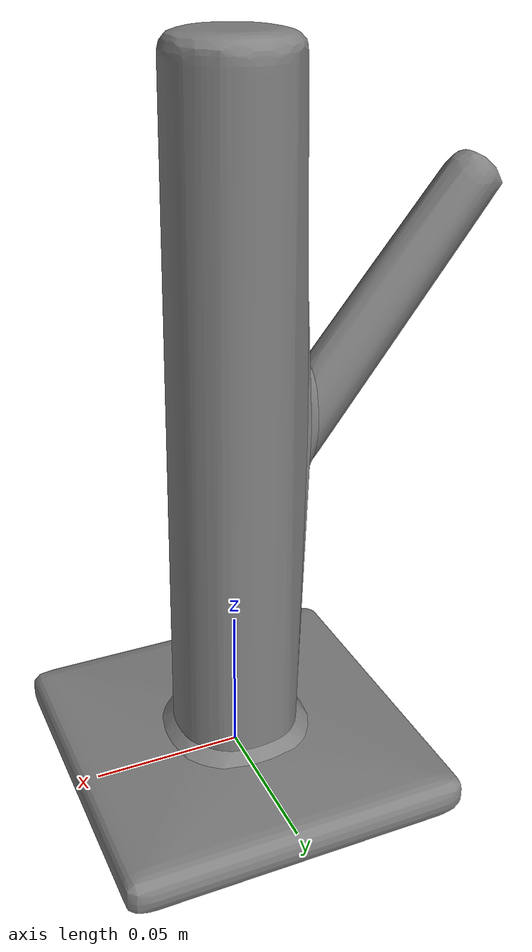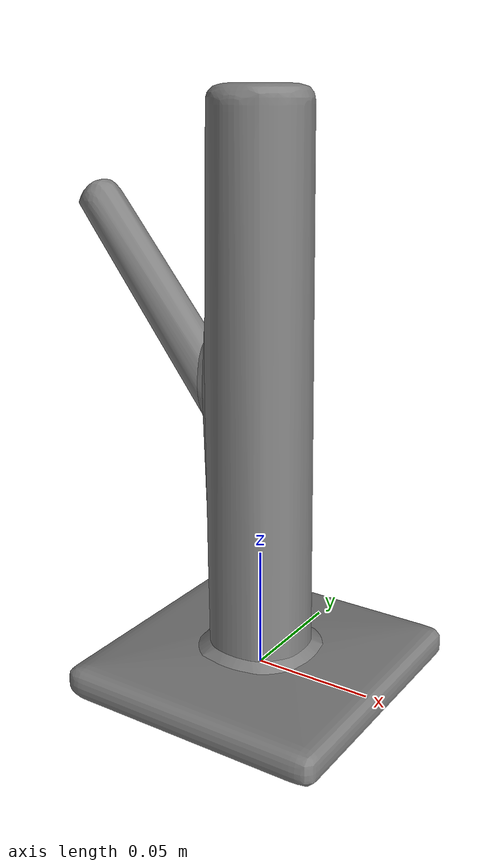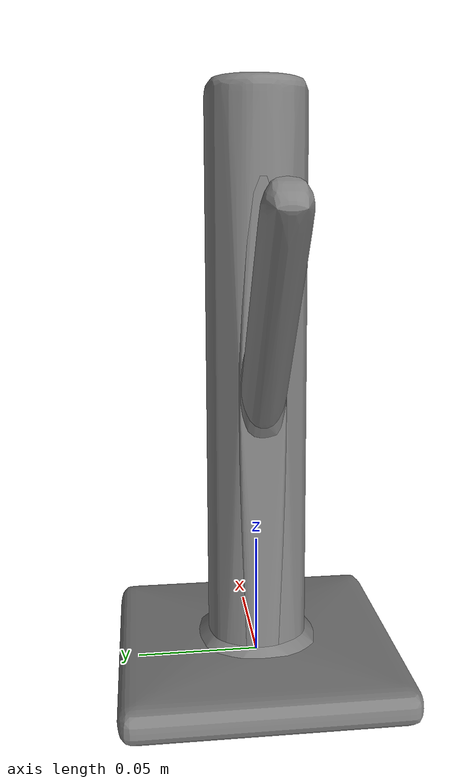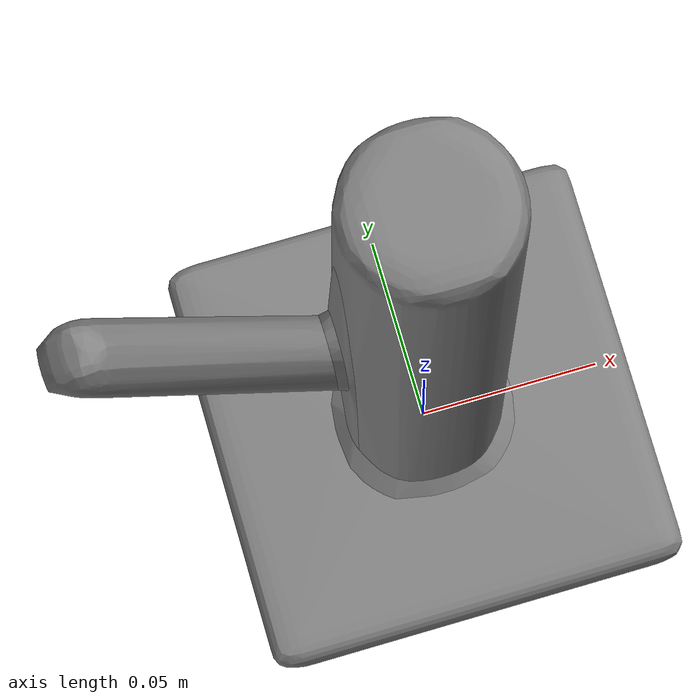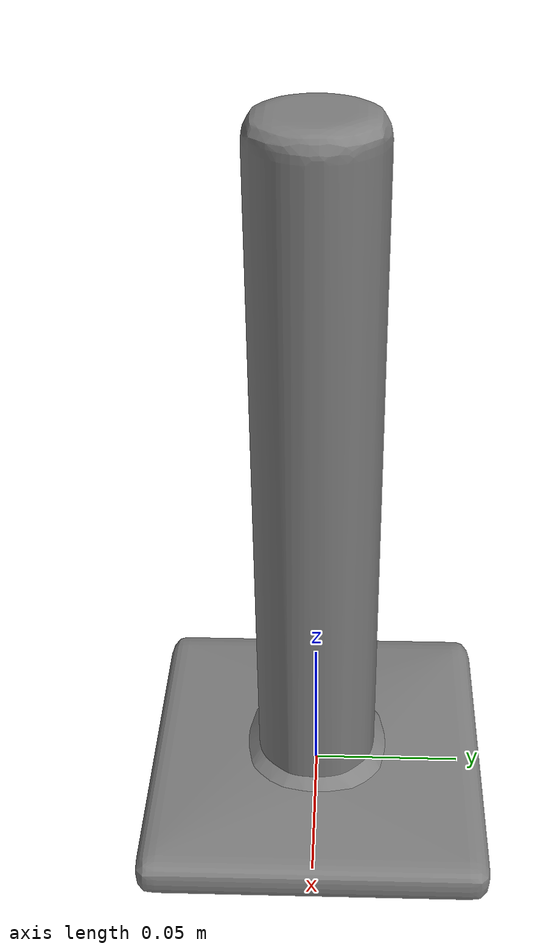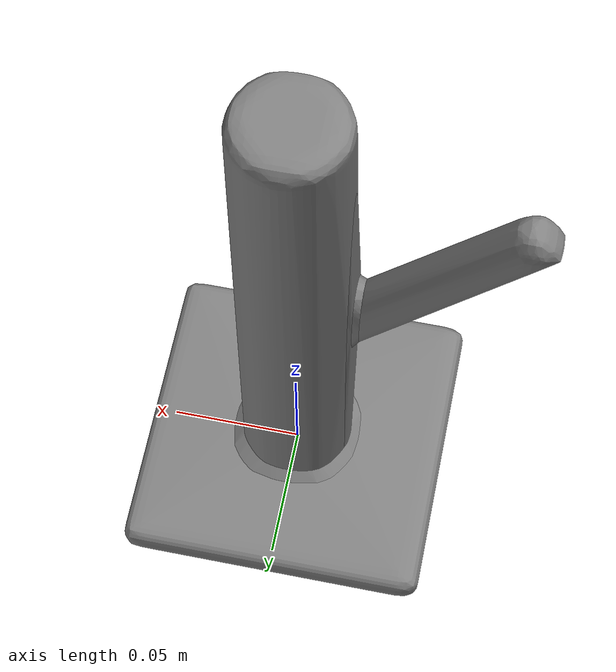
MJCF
<?xml version="1.0" ?>
<mujoco model="040_rack_0">
  <asset>
    <mesh name="040_rack_0_mesh" file="040_rack_0.stl" scale="1.1 1.1 1.1"/>
    <mesh name="040_rack_0_part_0" file="decomposed/040_rack_0_decomposed_0.stl" scale="1.1 1.1 1.1"/>
    <mesh name="040_rack_0_part_1" file="decomposed/040_rack_0_decomposed_1.stl" scale="1.1 1.1 1.1"/>
    <mesh name="040_rack_0_part_2" file="decomposed/040_rack_0_decomposed_2.stl" scale="1.1 1.1 1.1"/>
    <mesh name="040_rack_0_part_3" file="decomposed/040_rack_0_decomposed_3.stl" scale="1.1 1.1 1.1"/>
    <mesh name="040_rack_0_part_4" file="decomposed/040_rack_0_decomposed_4.stl" scale="1.1 1.1 1.1"/>
    <mesh name="040_rack_0_part_5" file="decomposed/040_rack_0_decomposed_5.stl" scale="1.1 1.1 1.1"/>
  </asset>
  <worldbody>
    <body name="040_rack_0">
      <geom name="040_rack_0_geom_0" type="mesh" mesh="040_rack_0_part_0"/>
      <geom name="040_rack_0_geom_1" type="mesh" mesh="040_rack_0_part_1"/>
      <geom name="040_rack_0_geom_2" type="mesh" mesh="040_rack_0_part_2"/>
      <geom name="040_rack_0_geom_3" type="mesh" mesh="040_rack_0_part_3"/>
      <geom name="040_rack_0_geom_4" type="mesh" mesh="040_rack_0_part_4"/>
      <geom name="040_rack_0_geom_5" type="mesh" mesh="040_rack_0_part_5"/>
    </body>
  </worldbody>
</mujoco>
